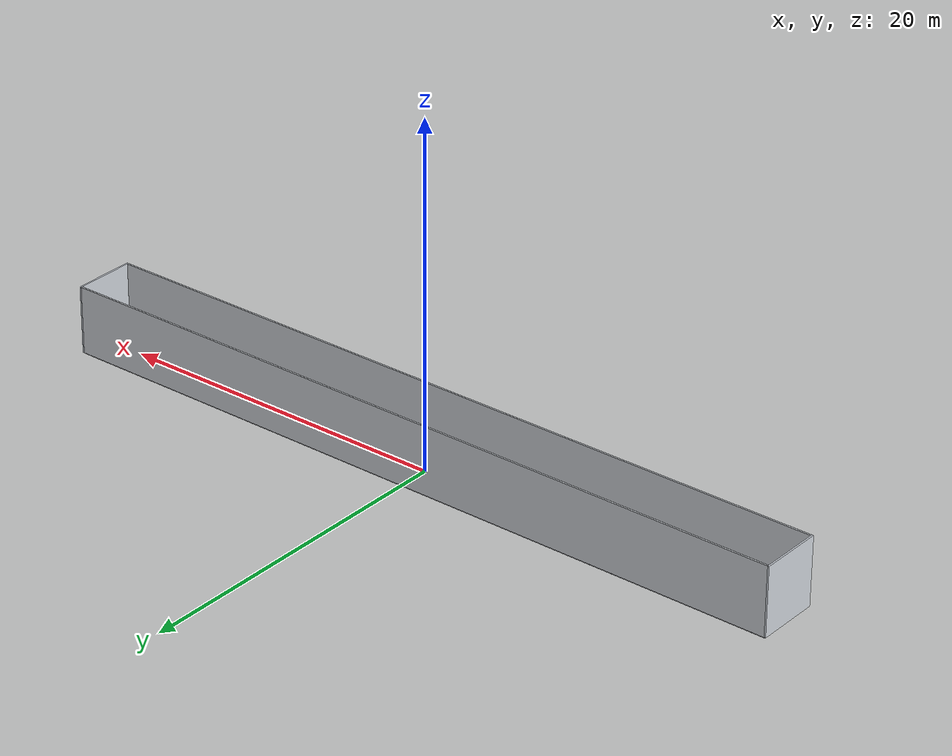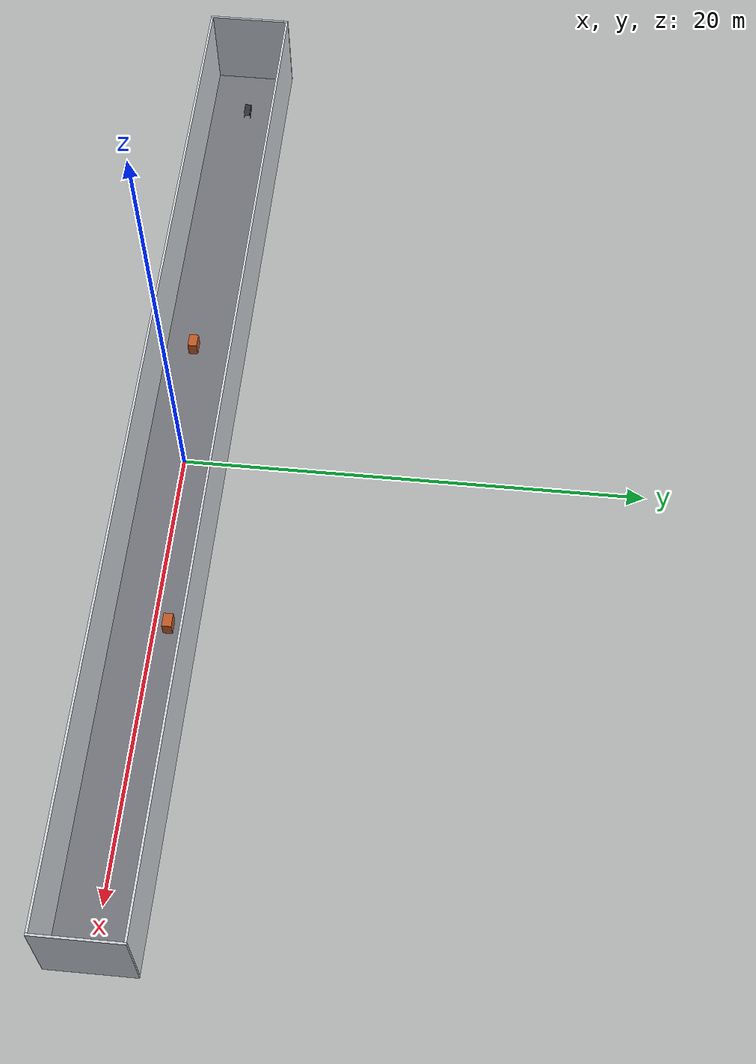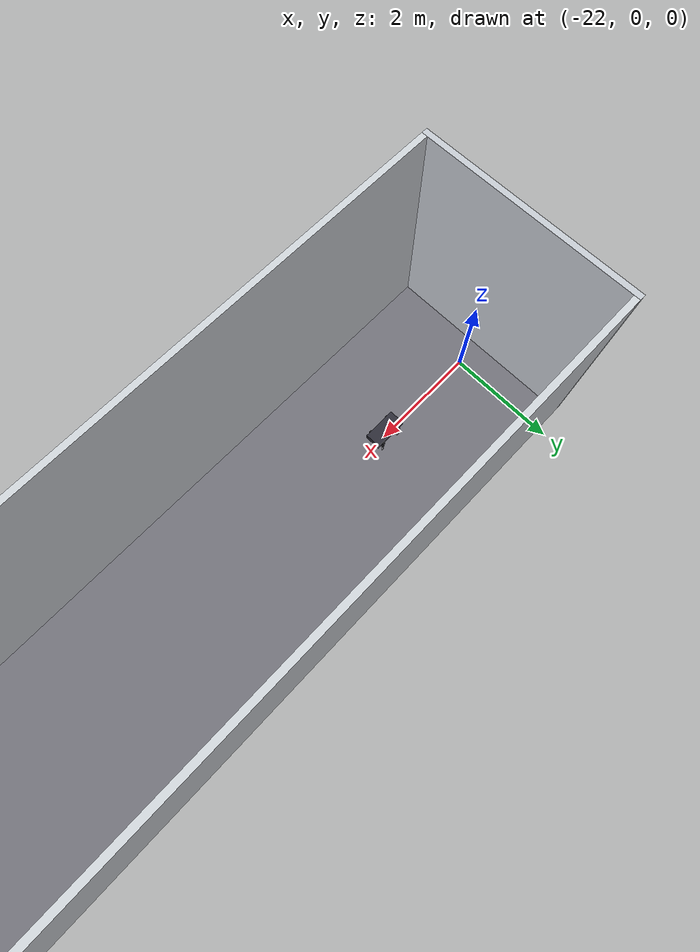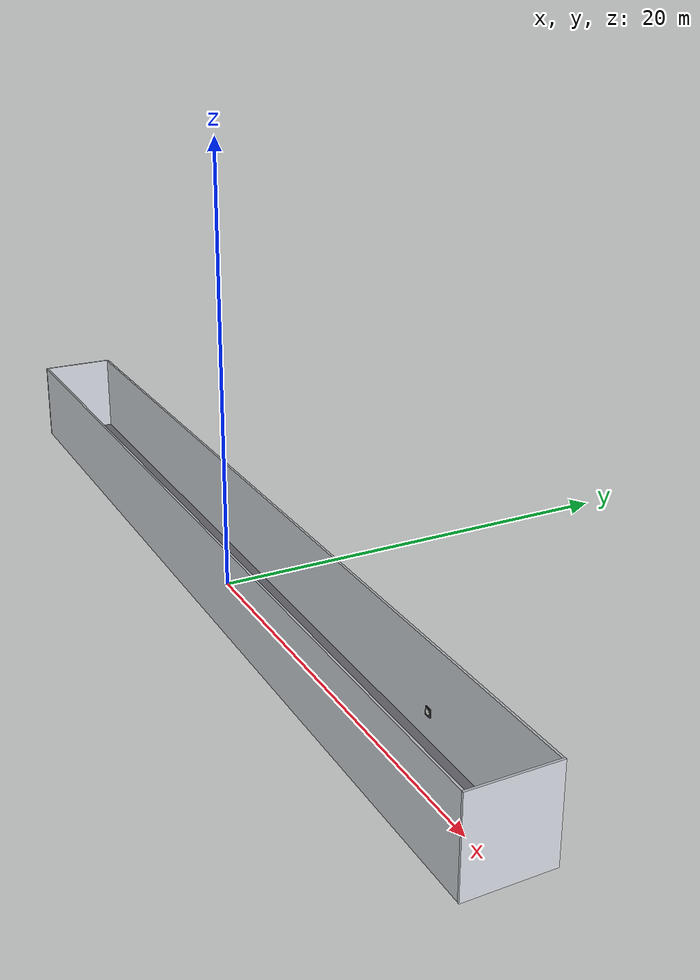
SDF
<?xml version="1.0"?>
<sdf version="1.10">
  <!-- 복도 Virtual Plant: 45 × 3.5 × 4 m -->
  <world name="corridor">
    <physics name="1ms" type="ignored">
      <max_step_size>0.001</max_step_size>
      <real_time_factor>1.0</real_time_factor>
    </physics>
    <plugin filename="gz-sim-physics-system" name="gz::sim::systems::Physics"/>
    <plugin filename="gz-sim-user-commands-system" name="gz::sim::systems::UserCommands"/>
    <plugin filename="gz-sim-scene-broadcaster-system" name="gz::sim::systems::SceneBroadcaster"/>
    <plugin filename="gz-sim-sensors-system" name="gz::sim::systems::Sensors">
      <render_engine>ogre2</render_engine>
    </plugin>
    <plugin filename="gz-sim-imu-system" name="gz::sim::systems::Imu"/>

    <light name="sun" type="directional">
      <cast_shadows>true</cast_shadows>
      <pose>0 0 10 0 0 0</pose>
      <diffuse>0.8 0.8 0.8 1</diffuse>
      <specular>0.2 0.2 0.2 1</specular>
      <direction>-0.5 0.1 -0.9</direction>
    </light>
    <atmosphere type="adiabatic"/>
    <gravity>0 0 -9.8</gravity>
    <magnetic_field>6e-06 2.3e-05 -4.2e-05</magnetic_field>

    <model name="floor">
      <static>true</static>
      <pose>0 0 -0.05 0 0 0</pose>
      <link name="link">
        <collision name="collision">
          <geometry><box><size>45 3.5 0.1</size></box></geometry>
        </collision>
        <visual name="visual">
          <geometry><box><size>45 3.5 0.1</size></box></geometry>
          <material>
            <ambient>0.35 0.35 0.38 1</ambient>
            <diffuse>0.45 0.45 0.48 1</diffuse>
          </material>
        </visual>
      </link>
    </model>

    <model name="wall_north">
      <static>true</static>
      <pose>0 1.8 2 0 0 0</pose>
      <link name="link">
        <collision name="collision">
          <geometry><box><size>45 0.1 4</size></box></geometry>
        </collision>
        <visual name="visual">
          <geometry><box><size>45 0.1 4</size></box></geometry>
          <material>
            <ambient>0.7 0.72 0.75 1</ambient>
            <diffuse>0.82 0.84 0.86 1</diffuse>
          </material>
        </visual>
      </link>
    </model>

    <model name="wall_south">
      <static>true</static>
      <pose>0 -1.8 2 0 0 0</pose>
      <link name="link">
        <collision name="collision">
          <geometry><box><size>45 0.1 4</size></box></geometry>
        </collision>
        <visual name="visual">
          <geometry><box><size>45 0.1 4</size></box></geometry>
          <material>
            <ambient>0.7 0.72 0.75 1</ambient>
            <diffuse>0.82 0.84 0.86 1</diffuse>
          </material>
        </visual>
      </link>
    </model>

    <model name="wall_west">
      <static>true</static>
      <pose>-22.55 0 2 0 0 0</pose>
      <link name="link">
        <collision name="collision">
          <geometry><box><size>0.1 3.7 4</size></box></geometry>
        </collision>
        <visual name="visual">
          <geometry><box><size>0.1 3.7 4</size></box></geometry>
          <material>
            <ambient>0.65 0.68 0.72 1</ambient>
            <diffuse>0.78 0.8 0.83 1</diffuse>
          </material>
        </visual>
      </link>
    </model>

    <model name="wall_east">
      <static>true</static>
      <pose>22.55 0 2 0 0 0</pose>
      <link name="link">
        <collision name="collision">
          <geometry><box><size>0.1 3.7 4</size></box></geometry>
        </collision>
        <visual name="visual">
          <geometry><box><size>0.1 3.7 4</size></box></geometry>
          <material>
            <ambient>0.65 0.68 0.72 1</ambient>
            <diffuse>0.78 0.8 0.83 1</diffuse>
          </material>
        </visual>
      </link>
    </model>

    <include>
      <uri>model://obstacle</uri>
      <name>obstacle_1</name>
      <pose>8 0.6 0.25 0 0 0</pose>
    </include>
    <include>
      <uri>model://obstacle</uri>
      <name>obstacle_2</name>
      <pose>-6 -0.5 0.25 0 0 0</pose>
    </include>
    <include>
      <uri>model://gauge</uri>
      <name>gauge_corridor</name>
      <pose>15 1.55 1.4 0 0 -1.5708</pose>
    </include>

    <include>
      <uri>model://go2</uri>
      <name>go2</name>
      <pose>-20 0 0.4 0 0 0</pose>
    </include>
  </world>
</sdf>

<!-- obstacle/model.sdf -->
<sdf version="1.10">
  <model name="obstacle">
    <static>true</static>
    <link name="link">
      <collision name="collision">
        <geometry><box><size>0.6 0.4 0.8</size></box></geometry>
      </collision>
      <visual name="visual">
        <geometry><box><size>0.6 0.4 0.8</size></box></geometry>
        <material>
          <ambient>0.55 0.25 0.12 1</ambient>
          <diffuse>0.75 0.35 0.15 1</diffuse>
        </material>
      </visual>
    </link>
  </model>
</sdf>

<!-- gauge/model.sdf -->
<sdf version="1.10">
  <model name="gauge">
    <static>true</static>
    <link name="panel">
      <collision name="collision">
        <geometry><box><size>0.04 0.35 0.35</size></box></geometry>
      </collision>
      <visual name="visual">
        <geometry><box><size>0.04 0.35 0.35</size></box></geometry>
        <material>
          <ambient>0.15 0.18 0.2 1</ambient>
          <diffuse>0.22 0.26 0.3 1</diffuse>
        </material>
      </visual>
    </link>
    <link name="dial">
      <pose>0.03 0 0 0 1.5708 0</pose>
      <visual name="visual">
        <geometry><cylinder><radius>0.12</radius><length>0.02</length></cylinder></geometry>
        <material>
          <ambient>0.85 0.85 0.8 1</ambient>
          <diffuse>0.95 0.95 0.9 1</diffuse>
        </material>
      </visual>
    </link>
  </model>
</sdf>

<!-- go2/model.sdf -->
<sdf version="1.10">
  <model name="go2">
    <pose>0 0 0.4 0 0 0</pose>
    <self_collide>false</self_collide>

    <link name="base_link">
      <inertial>
        <mass>6.0</mass>
        <inertia>
          <ixx>0.07</ixx><iyy>0.12</iyy><izz>0.15</izz>
          <ixy>0</ixy><ixz>0</ixz><iyz>0</iyz>
        </inertia>
      </inertial>
      <collision name="collision">
        <geometry><box><size>0.60 0.28 0.12</size></box></geometry>
      </collision>
      <visual name="visual">
        <geometry><box><size>0.60 0.28 0.12</size></box></geometry>
        <material>
          <ambient>0.12 0.12 0.14 1</ambient>
          <diffuse>0.18 0.18 0.22 1</diffuse>
        </material>
      </visual>
      <sensor name="imu_sensor" type="imu">
        <always_on>true</always_on>
        <update_rate>200</update_rate>
        <imu>
          <angular_velocity>
            <x><noise type="gaussian"><mean>0</mean><stddev>0.001</stddev></noise></x>
            <y><noise type="gaussian"><mean>0</mean><stddev>0.001</stddev></noise></y>
            <z><noise type="gaussian"><mean>0</mean><stddev>0.001</stddev></noise></z>
          </angular_velocity>
        </imu>
        <topic>imu</topic>
      </sensor>
      <sensor name="gpu_lidar" type="gpu_lidar">
        <pose>0.15 0 0.08 0 0 0</pose>
        <always_on>true</always_on>
        <update_rate>10</update_rate>
        <topic>lidar</topic>
        <lidar>
          <scan>
            <horizontal>
              <samples>360</samples>
              <resolution>1</resolution>
              <min_angle>-3.14159</min_angle>
              <max_angle>3.14159</max_angle>
            </horizontal>
            <vertical>
              <samples>16</samples>
              <resolution>1</resolution>
              <min_angle>-0.26</min_angle>
              <max_angle>0.26</max_angle>
            </vertical>
          </scan>
          <range>
            <min>0.1</min>
            <max>30</max>
            <resolution>0.01</resolution>
          </range>
        </lidar>
      </sensor>
      <sensor name="camera" type="camera">
        <pose>0.28 0 0.05 0 0 0</pose>
        <always_on>true</always_on>
        <update_rate>15</update_rate>
        <topic>camera</topic>
        <camera>
          <horizontal_fov>1.396</horizontal_fov>
          <image>
            <width>640</width>
            <height>480</height>
          </image>
          <clip>
            <near>0.05</near>
            <far>20</far>
          </clip>
        </camera>
      </sensor>
      <sensor name="thermal" type="camera">
        <pose>0.28 0 0.02 0 0 0</pose>
        <always_on>true</always_on>
        <update_rate>10</update_rate>
        <topic>thermal</topic>
        <camera>
          <horizontal_fov>1.0</horizontal_fov>
          <image>
            <width>320</width>
            <height>240</height>
            <format>L8</format>
          </image>
          <clip>
            <near>0.05</near>
            <far>15</far>
          </clip>
        </camera>
      </sensor>
    </link>

    <!-- 다리 4개 × hip / thigh / calf (시각·충돌만, 제어는 모듈1에서) -->
    <link name="FL_hip"><pose>0.19 0.10 0 0 0 0</pose>
      <inertial><mass>0.6</mass><inertia><ixx>0.001</ixx><iyy>0.001</iyy><izz>0.001</izz><ixy>0</ixy><ixz>0</ixz><iyz>0</iyz></inertia></inertial>
      <visual name="v"><geometry><box><size>0.06 0.06 0.06</size></box></geometry>
        <material><diffuse>0.9 0.55 0.1 1</diffuse></material></visual>
    </link>
    <link name="FL_thigh"><pose>0.19 0.14 -0.08 0 0 0</pose>
      <inertial><mass>1.0</mass><inertia><ixx>0.004</ixx><iyy>0.004</iyy><izz>0.001</izz><ixy>0</ixy><ixz>0</ixz><iyz>0</iyz></inertia></inertial>
      <collision name="c"><geometry><box><size>0.04 0.04 0.20</size></box></geometry></collision>
      <visual name="v"><geometry><box><size>0.04 0.04 0.20</size></box></geometry>
        <material><diffuse>0.2 0.2 0.22 1</diffuse></material></visual>
    </link>
    <link name="FL_calf"><pose>0.19 0.14 -0.26 0 0 0</pose>
      <inertial><mass>0.2</mass><inertia><ixx>0.003</ixx><iyy>0.003</iyy><izz>0.0004</izz><ixy>0</ixy><ixz>0</ixz><iyz>0</iyz></inertia></inertial>
      <collision name="c"><geometry><box><size>0.03 0.03 0.20</size></box></geometry></collision>
      <visual name="v"><geometry><box><size>0.03 0.03 0.20</size></box></geometry>
        <material><diffuse>0.75 0.75 0.78 1</diffuse></material></visual>
    </link>

    <link name="FR_hip"><pose>0.19 -0.10 0 0 0 0</pose>
      <inertial><mass>0.6</mass><inertia><ixx>0.001</ixx><iyy>0.001</iyy><izz>0.001</izz><ixy>0</ixy><ixz>0</ixz><iyz>0</iyz></inertia></inertial>
      <visual name="v"><geometry><box><size>0.06 0.06 0.06</size></box></geometry>
        <material><diffuse>0.9 0.55 0.1 1</diffuse></material></visual>
    </link>
    <link name="FR_thigh"><pose>0.19 -0.14 -0.08 0 0 0</pose>
      <inertial><mass>1.0</mass><inertia><ixx>0.004</ixx><iyy>0.004</iyy><izz>0.001</izz><ixy>0</ixy><ixz>0</ixz><iyz>0</iyz></inertia></inertial>
      <collision name="c"><geometry><box><size>0.04 0.04 0.20</size></box></geometry></collision>
      <visual name="v"><geometry><box><size>0.04 0.04 0.20</size></box></geometry>
        <material><diffuse>0.2 0.2 0.22 1</diffuse></material></visual>
    </link>
    <link name="FR_calf"><pose>0.19 -0.14 -0.26 0 0 0</pose>
      <inertial><mass>0.2</mass><inertia><ixx>0.003</ixx><iyy>0.003</iyy><izz>0.0004</izz><ixy>0</ixy><ixz>0</ixz><iyz>0</iyz></inertia></inertial>
      <collision name="c"><geometry><box><size>0.03 0.03 0.20</size></box></geometry></collision>
      <visual name="v"><geometry><box><size>0.03 0.03 0.20</size></box></geometry>
        <material><diffuse>0.75 0.75 0.78 1</diffuse></material></visual>
    </link>

    <link name="RL_hip"><pose>-0.19 0.10 0 0 0 0</pose>
      <inertial><mass>0.6</mass><inertia><ixx>0.001</ixx><iyy>0.001</iyy><izz>0.001</izz><ixy>0</ixy><ixz>0</ixz><iyz>0</iyz></inertia></inertial>
      <visual name="v"><geometry><box><size>0.06 0.06 0.06</size></box></geometry>
        <material><diffuse>0.9 0.55 0.1 1</diffuse></material></visual>
    </link>
    <link name="RL_thigh"><pose>-0.19 0.14 -0.08 0 0 0</pose>
      <inertial><mass>1.0</mass><inertia><ixx>0.004</ixx><iyy>0.004</iyy><izz>0.001</izz><ixy>0</ixy><ixz>0</ixz><iyz>0</iyz></inertia></inertial>
      <collision name="c"><geometry><box><size>0.04 0.04 0.20</size></box></geometry></collision>
      <visual name="v"><geometry><box><size>0.04 0.04 0.20</size></box></geometry>
        <material><diffuse>0.2 0.2 0.22 1</diffuse></material></visual>
    </link>
    <link name="RL_calf"><pose>-0.19 0.14 -0.26 0 0 0</pose>
      <inertial><mass>0.2</mass><inertia><ixx>0.003</ixx><iyy>0.003</iyy><izz>0.0004</izz><ixy>0</ixy><ixz>0</ixz><iyz>0</iyz></inertia></inertial>
      <collision name="c"><geometry><box><size>0.03 0.03 0.20</size></box></geometry></collision>
      <visual name="v"><geometry><box><size>0.03 0.03 0.20</size></box></geometry>
        <material><diffuse>0.75 0.75 0.78 1</diffuse></material></visual>
    </link>

    <link name="RR_hip"><pose>-0.19 -0.10 0 0 0 0</pose>
      <inertial><mass>0.6</mass><inertia><ixx>0.001</ixx><iyy>0.001</iyy><izz>0.001</izz><ixy>0</ixy><ixz>0</ixz><iyz>0</iyz></inertia></inertial>
      <visual name="v"><geometry><box><size>0.06 0.06 0.06</size></box></geometry>
        <material><diffuse>0.9 0.55 0.1 1</diffuse></material></visual>
    </link>
    <link name="RR_thigh"><pose>-0.19 -0.14 -0.08 0 0 0</pose>
      <inertial><mass>1.0</mass><inertia><ixx>0.004</ixx><iyy>0.004</iyy><izz>0.001</izz><ixy>0</ixy><ixz>0</ixz><iyz>0</iyz></inertia></inertial>
      <collision name="c"><geometry><box><size>0.04 0.04 0.20</size></box></geometry></collision>
      <visual name="v"><geometry><box><size>0.04 0.04 0.20</size></box></geometry>
        <material><diffuse>0.2 0.2 0.22 1</diffuse></material></visual>
    </link>
    <link name="RR_calf"><pose>-0.19 -0.14 -0.26 0 0 0</pose>
      <inertial><mass>0.2</mass><inertia><ixx>0.003</ixx><iyy>0.003</iyy><izz>0.0004</izz><ixy>0</ixy><ixz>0</ixz><iyz>0</iyz></inertia></inertial>
      <collision name="c"><geometry><box><size>0.03 0.03 0.20</size></box></geometry></collision>
      <visual name="v"><geometry><box><size>0.03 0.03 0.20</size></box></geometry>
        <material><diffuse>0.75 0.75 0.78 1</diffuse></material></visual>
    </link>

    <joint name="FL_hip_joint" type="revolute">
      <parent>base_link</parent><child>FL_hip</child>
      <axis><xyz>1 0 0</xyz><limit><lower>-1.05</lower><upper>1.05</upper></limit></axis>
    </joint>
    <joint name="FL_thigh_joint" type="revolute">
      <parent>FL_hip</parent><child>FL_thigh</child>
      <axis><xyz>0 1 0</xyz><limit><lower>-0.66</lower><upper>2.97</upper></limit></axis>
    </joint>
    <joint name="FL_calf_joint" type="revolute">
      <parent>FL_thigh</parent><child>FL_calf</child>
      <axis><xyz>0 1 0</xyz><limit><lower>-2.72</lower><upper>-0.84</upper></limit></axis>
    </joint>
    <joint name="FR_hip_joint" type="revolute">
      <parent>base_link</parent><child>FR_hip</child>
      <axis><xyz>1 0 0</xyz><limit><lower>-1.05</lower><upper>1.05</upper></limit></axis>
    </joint>
    <joint name="FR_thigh_joint" type="revolute">
      <parent>FR_hip</parent><child>FR_thigh</child>
      <axis><xyz>0 1 0</xyz><limit><lower>-0.66</lower><upper>2.97</upper></limit></axis>
    </joint>
    <joint name="FR_calf_joint" type="revolute">
      <parent>FR_thigh</parent><child>FR_calf</child>
      <axis><xyz>0 1 0</xyz><limit><lower>-2.72</lower><upper>-0.84</upper></limit></axis>
    </joint>
    <joint name="RL_hip_joint" type="revolute">
      <parent>base_link</parent><child>RL_hip</child>
      <axis><xyz>1 0 0</xyz><limit><lower>-1.05</lower><upper>1.05</upper></limit></axis>
    </joint>
    <joint name="RL_thigh_joint" type="revolute">
      <parent>RL_hip</parent><child>RL_thigh</child>
      <axis><xyz>0 1 0</xyz><limit><lower>-0.66</lower><upper>2.97</upper></limit></axis>
    </joint>
    <joint name="RL_calf_joint" type="revolute">
      <parent>RL_thigh</parent><child>RL_calf</child>
      <axis><xyz>0 1 0</xyz><limit><lower>-2.72</lower><upper>-0.84</upper></limit></axis>
    </joint>
    <joint name="RR_hip_joint" type="revolute">
      <parent>base_link</parent><child>RR_hip</child>
      <axis><xyz>1 0 0</xyz><limit><lower>-1.05</lower><upper>1.05</upper></limit></axis>
    </joint>
    <joint name="RR_thigh_joint" type="revolute">
      <parent>RR_hip</parent><child>RR_thigh</child>
      <axis><xyz>0 1 0</xyz><limit><lower>-0.66</lower><upper>2.97</upper></limit></axis>
    </joint>
    <joint name="RR_calf_joint" type="revolute">
      <parent>RR_thigh</parent><child>RR_calf</child>
      <axis><xyz>0 1 0</xyz><limit><lower>-2.72</lower><upper>-0.84</upper></limit></axis>
    </joint>
  </model>
</sdf>
